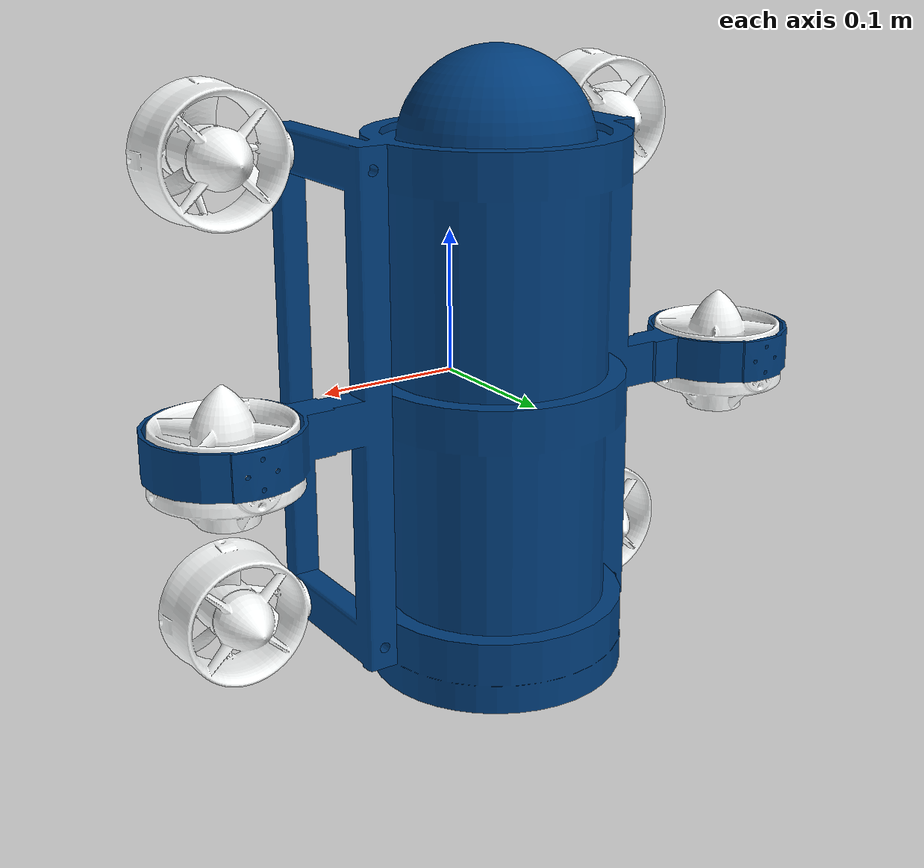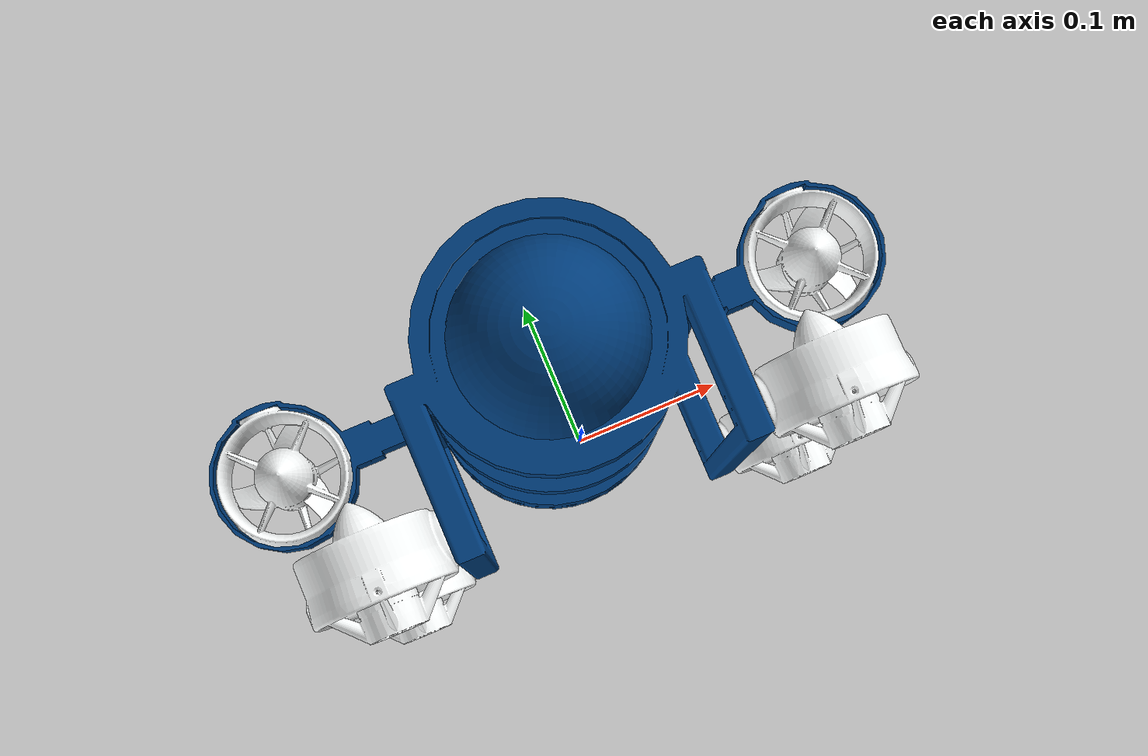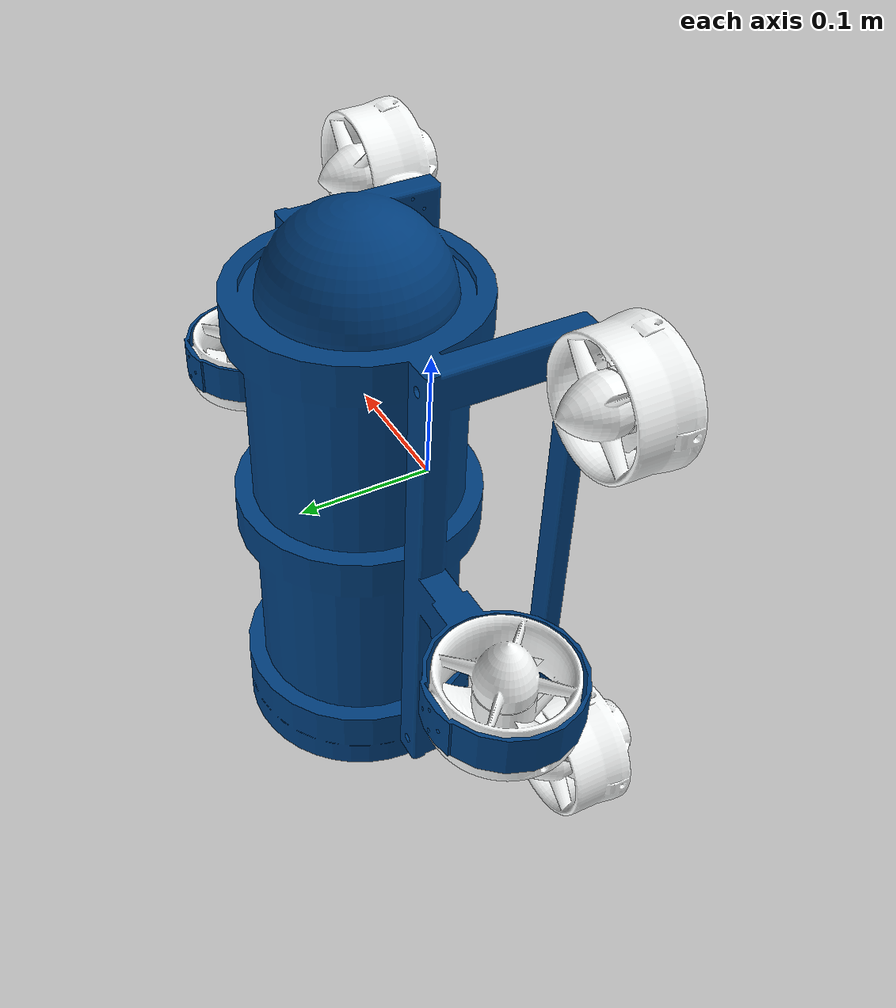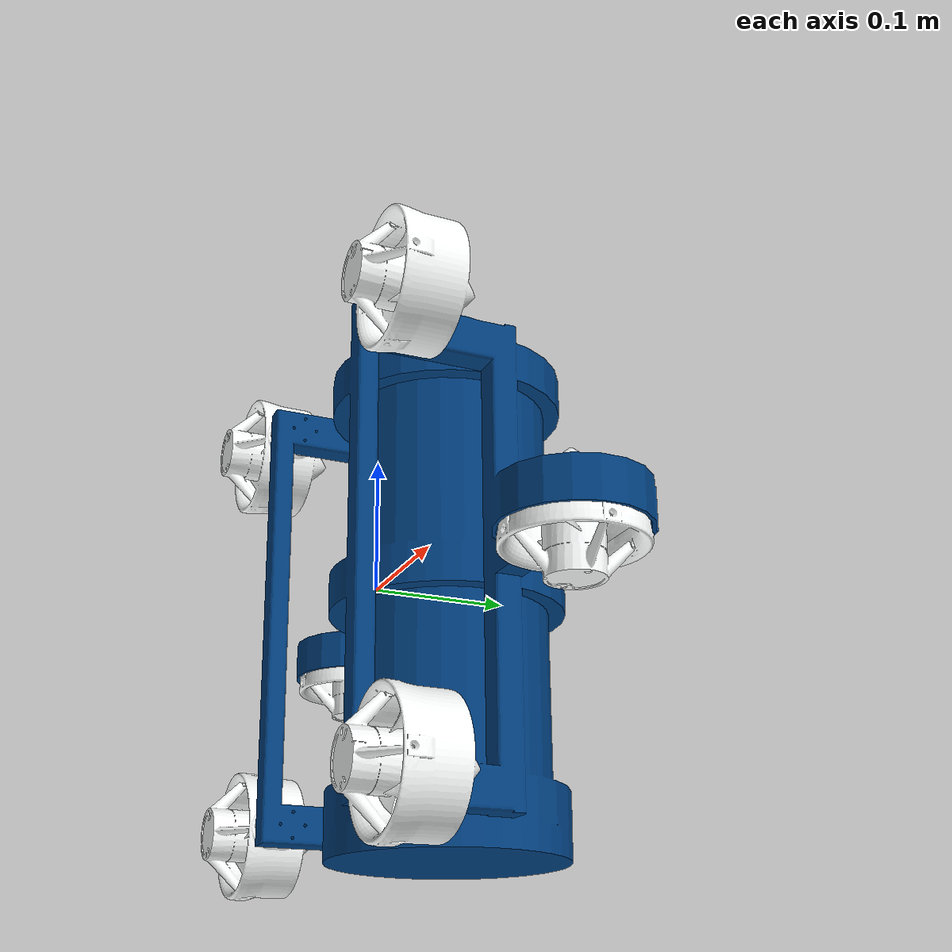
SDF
<sdf version='1.11'>
  <model name='montaje_dron'>
    <link name='base_link'>
      <inertial>
        <pose>5.3002347816912301e-06 0.044894996129924897 -0.010530314339279499 0 0 0</pose>
        <mass>2.8960052156543301</mass>
        <inertia>
          <ixx>0.036149218381207798</ixx>
          <ixy>-5.4147606777364998e-09</ixy>
          <ixz>-2.0747050638531198e-06</ixz>
          <iyy>0.0458775178263102</iyy>
          <iyz>-5.4936120788617897e-08</iyz>
          <izz>0.020865148782967601</izz>
        </inertia>
      </inertial>
      <collision name='base_link_collision'>
        <pose>0 0 0 0 0 0</pose>
        <geometry>
          <mesh>
            <scale>1 1 1</scale>
            <uri>model://montaje_dron/meshes/base_link.STL</uri>
          </mesh>
        </geometry>
      </collision>
      <visual name='base_link_visual'>
        <pose>0 0 0 0 0 0</pose>
        <geometry>
          <mesh>
            <scale>1 1 1</scale>
            <uri>model://montaje_dron/meshes/base_link.STL</uri>
          </mesh>
        </geometry>
        <material>
          <diffuse>0 0.24509804 0.495098054 1</diffuse>
          <ambient>0 0.24509804 0.495098054 1</ambient>
        </material>
      </visual>
    </link>
    <joint name='rotor1_joint' type='revolute'>
      <pose relative_to='base_link'>-0.1565 -0.031001000000000001 -0.16 0 0 0</pose>
      <parent>base_link</parent>
      <child>rotor1_Link</child>
      <axis>
        <xyz>0 1 0</xyz>
        <limit>
          <lower>0</lower>
          <upper>0</upper>
          <effort>0</effort>
          <velocity>0</velocity>
        </limit>
        <dynamics>
          <spring_reference>0</spring_reference>
          <spring_stiffness>0</spring_stiffness>
        </dynamics>
      </axis>
    </joint>
    <link name='rotor1_Link'>
      <pose relative_to='rotor1_joint'>0 0 0 0 0 0</pose>
      <inertial>
        <pose>0.00026251757385814501 -0.0098800076471902993 2.6312954548135499e-05 0 0 0</pose>
        <mass>0.34993270007115901</mass>
        <inertia>
          <ixx>0.00020193624381378901</ixx>
          <ixy>1.6377373536646501e-07</ixy>
          <ixz>-6.7941286460598297e-08</ixz>
          <iyy>0.00029979339393734002</iyy>
          <iyz>-1.2008649223557701e-07</iyz>
          <izz>0.00020597803448985401</izz>
        </inertia>
      </inertial>
      <collision name='rotor1_Link_collision'>
        <pose>0 0 0 0 0 0</pose>
        <geometry>
          <mesh>
            <scale>1 1 1</scale>
            <uri>model://montaje_dron/meshes/rotor1_Link.STL</uri>
          </mesh>
        </geometry>
      </collision>
      <visual name='rotor1_Link_visual'>
        <pose>0 0 0 0 0 0</pose>
        <geometry>
          <mesh>
            <scale>1 1 1</scale>
            <uri>model://montaje_dron/meshes/rotor1_Link.STL</uri>
          </mesh>
        </geometry>
        <material>
          <diffuse>0.990196109 1 1 1</diffuse>
          <ambient>0.990196109 1 1 1</ambient>
        </material>
      </visual>
    </link>
    <joint name='rotor2_joint' type='revolute'>
      <pose relative_to='base_link'>-0.19863 0.055703999999999997 0.0012689999999999999 0 0 0</pose>
      <parent>base_link</parent>
      <child>rotor2_Link</child>
      <axis>
        <xyz>0 0 1</xyz>
        <limit>
          <lower>0</lower>
          <upper>0</upper>
          <effort>0</effort>
          <velocity>0</velocity>
        </limit>
        <dynamics>
          <spring_reference>0</spring_reference>
          <spring_stiffness>0</spring_stiffness>
        </dynamics>
      </axis>
    </joint>
    <link name='rotor2_Link'>
      <pose relative_to='rotor2_joint'>0 0 0 0 0 0</pose>
      <inertial>
        <pose>2.6313377374576101e-05 0.00026251867211500601 -0.011234755375655599 0 0 0</pose>
        <mass>0.34993267356796298</mass>
        <inertia>
          <ixx>0.000205978021691313</ixx>
          <ixy>-6.7938872062189804e-08</ixy>
          <ixz>-1.2008232811030799e-07</ixz>
          <iyy>0.00020193623307252501</iyy>
          <iyz>1.6378030304949599e-07</iyz>
          <izz>0.00029979338852750202</izz>
        </inertia>
      </inertial>
      <collision name='rotor2_Link_collision'>
        <pose>0 0 0 0 0 0</pose>
        <geometry>
          <mesh>
            <scale>1 1 1</scale>
            <uri>model://montaje_dron/meshes/rotor2_Link.STL</uri>
          </mesh>
        </geometry>
      </collision>
      <visual name='rotor2_Link_visual'>
        <pose>0 0 0 0 0 0</pose>
        <geometry>
          <mesh>
            <scale>1 1 1</scale>
            <uri>model://montaje_dron/meshes/rotor2_Link.STL</uri>
          </mesh>
        </geometry>
        <material>
          <diffuse>0.990196109 1 1 1</diffuse>
          <ambient>0.990196109 1 1 1</ambient>
        </material>
      </visual>
    </link>
    <joint name='rotor3_joint' type='revolute'>
      <pose relative_to='base_link'>-0.1565 -0.026124999999999999 0.16 0 0 0</pose>
      <parent>base_link</parent>
      <child>rotor3_Link</child>
      <axis>
        <xyz>0 1 0</xyz>
        <limit>
          <lower>0</lower>
          <upper>0</upper>
          <effort>0</effort>
          <velocity>0</velocity>
        </limit>
        <dynamics>
          <spring_reference>0</spring_reference>
          <spring_stiffness>0</spring_stiffness>
        </dynamics>
      </axis>
    </joint>
    <link name='rotor3_Link'>
      <pose relative_to='rotor3_joint'>0 0 0 0 0 0</pose>
      <inertial>
        <pose>0.00026251757185652397 -0.0147560508390667 2.6312964653496498e-05 0 0 0</pose>
        <mass>0.34993270302319401</mass>
        <inertia>
          <ixx>0.00020193624551076699</ixx>
          <ixy>1.6377373482306499e-07</ixy>
          <ixz>-6.7941290998438994e-08</ixz>
          <iyy>0.000299793397139071</iyy>
          <iyz>-1.2008655491223199e-07</iyz>
          <izz>0.00020597803625110501</izz>
        </inertia>
      </inertial>
      <collision name='rotor3_Link_collision'>
        <pose>0 0 0 0 0 0</pose>
        <geometry>
          <mesh>
            <scale>1 1 1</scale>
            <uri>model://montaje_dron/meshes/rotor3_Link.STL</uri>
          </mesh>
        </geometry>
      </collision>
      <visual name='rotor3_Link_visual'>
        <pose>0 0 0 0 0 0</pose>
        <geometry>
          <mesh>
            <scale>1 1 1</scale>
            <uri>model://montaje_dron/meshes/rotor3_Link.STL</uri>
          </mesh>
        </geometry>
        <material>
          <diffuse>0.990196109 1 1 1</diffuse>
          <ambient>0.990196109 1 1 1</ambient>
        </material>
      </visual>
    </link>
    <joint name='rotor4_joint' type='revolute'>
      <pose relative_to='base_link'>0.1565 -0.029645999999999999 -0.16 0 0 0</pose>
      <parent>base_link</parent>
      <child>rotor4_Link</child>
      <axis>
        <xyz>0 1 0</xyz>
        <limit>
          <lower>0</lower>
          <upper>0</upper>
          <effort>0</effort>
          <velocity>0</velocity>
        </limit>
        <dynamics>
          <spring_reference>0</spring_reference>
          <spring_stiffness>0</spring_stiffness>
        </dynamics>
      </axis>
    </joint>
    <link name='rotor4_Link'>
      <pose relative_to='rotor4_joint'>0 0 0 0 0 0</pose>
      <inertial>
        <pose>-0.00026251757636760998 -0.0112347576750203 -2.6313026075197601e-05 0 0 0</pose>
        <mass>0.34993270087618999</mass>
        <inertia>
          <ixx>0.00020193624479730501</ixx>
          <ixy>-1.63773735571346e-07</ixy>
          <ixz>-6.7941326250452704e-08</ixz>
          <iyy>0.00029979339475429199</iyy>
          <iyz>1.20086545102204e-07</iyz>
          <izz>0.00020597803457790499</izz>
        </inertia>
      </inertial>
      <collision name='rotor4_Link_collision'>
        <pose>0 0 0 0 0 0</pose>
        <geometry>
          <mesh>
            <scale>1 1 1</scale>
            <uri>model://montaje_dron/meshes/rotor4_Link.STL</uri>
          </mesh>
        </geometry>
      </collision>
      <visual name='rotor4_Link_visual'>
        <pose>0 0 0 0 0 0</pose>
        <geometry>
          <mesh>
            <scale>1 1 1</scale>
            <uri>model://montaje_dron/meshes/rotor4_Link.STL</uri>
          </mesh>
        </geometry>
        <material>
          <diffuse>0.990196109 1 1 1</diffuse>
          <ambient>0.990196109 1 1 1</ambient>
        </material>
      </visual>
    </link>
    <joint name='rotor5_joint' type='revolute'>
      <pose relative_to='base_link'>0.19863 0.055703999999999997 0.0047902999999999999 0 0 0</pose>
      <parent>base_link</parent>
      <child>rotor5_Link</child>
      <axis>
        <xyz>0 0 1</xyz>
        <limit>
          <lower>0</lower>
          <upper>0</upper>
          <effort>0</effort>
          <velocity>0</velocity>
        </limit>
        <dynamics>
          <spring_reference>0</spring_reference>
          <spring_stiffness>0</spring_stiffness>
        </dynamics>
      </axis>
    </joint>
    <link name='rotor5_Link'>
      <pose relative_to='rotor5_joint'>0 0 0 0 0 0</pose>
      <inertial>
        <pose>2.63133773369117e-05 0.00026251867244844903 -0.0147560484649656 0 0 0</pose>
        <mass>0.349932673568499</mass>
        <inertia>
          <ixx>0.00020597802194674301</ixx>
          <ixy>-6.7938873860106e-08</ixy>
          <ixz>-1.2008232810563999e-07</ixz>
          <iyy>0.00020193623307347401</iyy>
          <iyz>1.6378029861212601e-07</iyz>
          <izz>0.00029979338878292103</izz>
        </inertia>
      </inertial>
      <collision name='rotor5_Link_collision'>
        <pose>0 0 0 0 0 0</pose>
        <geometry>
          <mesh>
            <scale>1 1 1</scale>
            <uri>model://montaje_dron/meshes/rotor5_Link.STL</uri>
          </mesh>
        </geometry>
      </collision>
      <visual name='rotor5_Link_visual'>
        <pose>0 0 0 0 0 0</pose>
        <geometry>
          <mesh>
            <scale>1 1 1</scale>
            <uri>model://montaje_dron/meshes/rotor5_Link.STL</uri>
          </mesh>
        </geometry>
        <material>
          <diffuse>0.990196109 1 1 1</diffuse>
          <ambient>0.990196109 1 1 1</ambient>
        </material>
      </visual>
    </link>
    <joint name='rotor6_joint' type='revolute'>
      <pose relative_to='base_link'>0.1565 -0.046001 0.16 0 0 0</pose>
      <parent>base_link</parent>
      <child>rotor6_Link</child>
      <axis>
        <xyz>0 1 0</xyz>
        <limit>
          <lower>0</lower>
          <upper>0</upper>
          <effort>0</effort>
          <velocity>0</velocity>
        </limit>
        <dynamics>
          <spring_reference>0</spring_reference>
          <spring_stiffness>0</spring_stiffness>
        </dynamics>
      </axis>
    </joint>
    <link name='rotor6_Link'>
      <pose relative_to='rotor6_joint'>0 0 0 0 0 0</pose>
      <inertial>
        <pose>-0.00026251756916853601 0.0051206992373566103 -2.63128932761481e-05 0 0 0</pose>
        <mass>0.34993270221998801</mass>
        <inertia>
          <ixx>0.00020193624452897701</ixx>
          <ixy>-1.63773735309342e-07</ixy>
          <ixz>-6.7941254138730306e-08</ixz>
          <iyy>0.00029979339658062199</iyy>
          <iyz>1.2008650282632e-07</iyz>
          <izz>0.00020597803642063799</izz>
        </inertia>
      </inertial>
      <collision name='rotor6_Link_collision'>
        <pose>0 0 0 0 0 0</pose>
        <geometry>
          <mesh>
            <scale>1 1 1</scale>
            <uri>model://montaje_dron/meshes/rotor6_Link.STL</uri>
          </mesh>
        </geometry>
      </collision>
      <visual name='rotor6_Link_visual'>
        <pose>0 0 0 0 0 0</pose>
        <geometry>
          <mesh>
            <scale>1 1 1</scale>
            <uri>model://montaje_dron/meshes/rotor6_Link.STL</uri>
          </mesh>
        </geometry>
        <material>
          <diffuse>0.990196109 1 1 1</diffuse>
          <ambient>0.990196109 1 1 1</ambient>
        </material>
      </visual>
    </link>
  </model>
</sdf>
